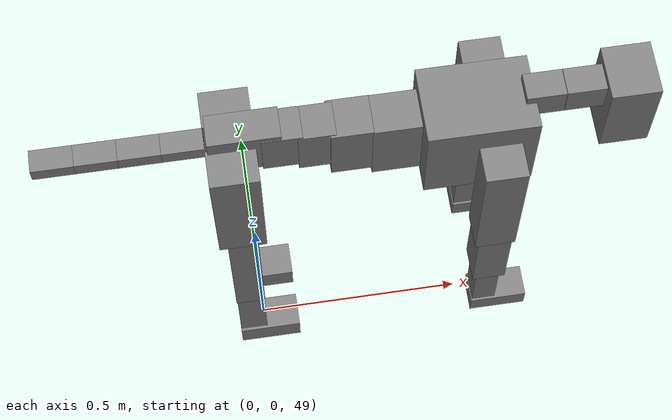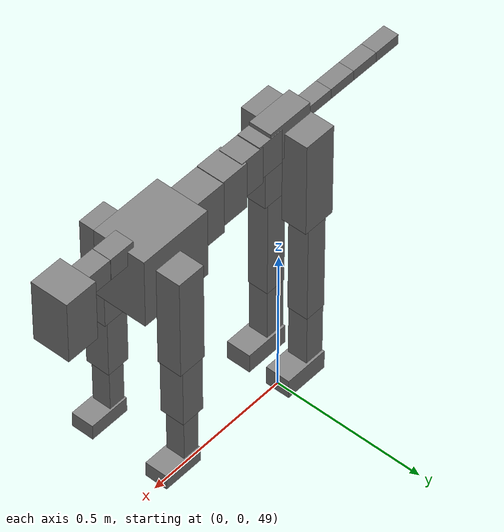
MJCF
<mujoco model="dog">

    <default>
        <joint armature="0.02" stiffness="1" damping="0.2" limited="true" />
        <geom condim="3" friction="1 0.05 0.05" margin="0.01" />
        <motor ctrllimited="true" ctrlrange="-1.0 1.0" forcelimited="true" gear="50" />
    </default>

    <compiler inertiafromgeom="true" angle="radian" />

    <option timestep="0.016" iterations="50" tolerance="1e-10" solver="Newton" jacobian="dense" cone="pyramidal" />

    <size nconmax="20000" njmax="60000" nstack="5000000" />
    <visual>
        <map force="0.1" zfar="30" />
        <rgba haze="0.15 0.25 0.35 1" />
        <quality shadowsize="2048" />
        <global offwidth="800" offheight="800" />
    </visual>

    <asset>
        <texture type="skybox" builtin="gradient" rgb1="0.3 0.5 0.7" rgb2="0 0 0" width="512" height="512" />
        <texture name="texplane" type="2d" builtin="checker" rgb1=".2 .3 .4" rgb2=".1 0.15 0.2" width="512" height="512" mark="cross" markrgb=".8 .8 .8" />
        <texture name="texgeom" type="cube" builtin="flat" mark="cross" width="127" height="1278" rgb1="0.8 0.6 0.4" rgb2="0.8 0.6 0.4" markrgb="1 1 1" random="0.01" />

        <material name="matplane" reflectance="0.3" texture="texplane" texrepeat="1 1" texuniform="true" />
        <material name="matgeom" texture="texgeom" texuniform="true" rgba="0.8 0.6 .4 1" />
    </asset>

    <worldbody>
        <geom name="floor" pos="0 0 0" size="0 0 .25" type="plane" material="matplane" condim="3" />

        <light directional="false" diffuse=".2 .2 .2" specular="0 0 0" pos="0 0 5" dir="0 0 -1" castshadow="false" />
        <light mode="targetbodycom" target="torso" directional="false" diffuse=".8 .8 .8" specular="0.3 0.3 0.3" pos="0 0 4.0" dir="0 0 -1" />

        <body name="root" pos="0 0 50">
            <freejoint name="root_1" />
            <geom type="box" pos="0 0 -0.02" size="0.0774  0.0358  0.063" density="2030" />

            <body name="spine1" pos="0.054 0 0">
                <joint name="spine1_y" axis="0 1 0" range="0 0.7" limited="true" />
                <geom type="box" pos="0.02375 0 -0.03" size="0.04375  0.0375  0.05985" density="2030" />

                <body name="spine2" pos="0.0612 0 0">
                    <joint name="spine2_y" axis="0 1 0" range="-0.15 0.15" limited="true" />
                    <geom type="box" pos="0.03555  0  -0.04" size="0.04055  0.039  0.06615" density="2030" />

                    <body name="spine3" pos="0.0730 0 0">
                        <joint name="spine3_y" axis="0 1 0" range="-0.15 0.15" limited="true" />
                        <geom type="box" pos="0.03555  0  -0.057" size="0.04555  0.0445  0.081" density="2030" />

                        <body name="spine4" pos="0.0780 0 0">
                            <joint name="spine4_y" axis="0 1 0" range="-0.15 0.15" limited="true" />
                            <geom type="box" pos="0.05265  0  -0.07" size="0.05265  0.045  0.09135" density="2030" />

                            <body name="torso" pos="0.1082 0 0">
                                <joint name="torso_y" axis="0 1 0" range="-0.15 0.15" limited="true" />
                                <geom type="box" pos="0.11925  0  -0.085" size="0.11925  0.085  0.11745" density="2030" />

                                <body name="neck1" pos="0.2160  0   0.0180">
                                    <joint name="neck1_y" axis="0 1 0" range="-1.2  -1" limited="true" />
                                    <geom type="box" pos="0.0423  0  0" size="0.0423  0.03  0.036" density="2325" />

                                    <body name="neck2" pos="0.0853  0  0">
                                        <joint name="neck2_y" axis="0 1 0" range="0.1  0" limited="true" />
                                        <geom type="box" pos="0.0423  0  0" size="0.0423  0.03  0.036" density="2325" />

                                        <body name="head" pos="0.0853  0  0">
                                            <joint name="head_y" axis="0 1 0" range="-0.3  -0.2" limited="true" />
                                            <geom type="box" pos="0.0531  0  -0.055" size="0.0531  0.06  0.1044" density="4030" />

                                        </body>
                                    </body>
                                </body>

                                <body name="front_shoulder" pos="0.156  0   -0.0480">
                                    <joint name="front_shoulder_y" axis="0 1 0" range="-1 1.5" limited="true" />
                                    <geom type="box" pos="0 0.13 -0.1434" size="0.0457  0.0390  0.1700" density="1158" />
                                    <geom type="box" pos="0 -0.13 -0.1434" size="0.0457  0.0390  0.1700" density="1158" />

                                    <body name="front_elbow" pos="0  0  -0.2868">
                                        <joint name="front_elbow_y" axis="0 1 0" range="-2 0" limited="true" />
                                        <geom type="box" pos="0 0.13 -0.1106" size="0.0381  0.0389  0.1106" density="1081" />
                                        <geom type="box" pos="0 -0.13 -0.1106" size="0.0381  0.0389  0.1106" density="1081" />

                                        <body name="front_wrist" pos="0  0  -0.2211">
                                            <joint name="front_wrist_y" axis="0 1 0" range="-0.2 0" limited="true" />
                                            <geom type="box" pos="0 0.13 -0.0816" size="0.0275  0.0306  0.0948" density="1664" />
                                            <geom type="box" pos="0 -0.13 -0.0816" size="0.0275  0.0306  0.0948" density="1664" />

                                            <body name="front_finger_end" pos="0  0  -0.1633">
                                                <joint name="front_finger_y" axis="0 1 0" range="-0.4 1" limited="true" />
                                                <geom type="box" pos="0.0364  0.13  -0.0107" size="0.0666  0.0364  0.0257" density="1515" />
                                                <geom type="box" pos="0.0364  -0.13  -0.0107" size="0.0666  0.0364  0.0257" density="1515" />

                                            </body>

                                        </body>
                                    </body>
                                </body>

                            </body>
                        </body>
                    </body>
                </body>
            </body>

            <body name="back_hip" pos="-0.03 0 -0.018">
                <joint name="back_hip_y" axis="0 1 0" range="-1.5 0.3" limited="true" />
                <geom type="box" pos="0 0.07 -0.1380" size="0.0531  0.0416  0.1608" density="1154" />
                <geom type="box" pos="0 -0.07 -0.1380" size="0.0531  0.0416  0.1608" density="1154" />

                <body name="back_knee" pos="0  0  -0.2759">
                    <joint name="back_knee_y" axis="0 1 0" range="0 2.8" limited="true" />
                    <geom type="box" pos="0 0.07 -0.1782" size="0.0345  0.0340  0.1938" density="1227" />
                    <geom type="box" pos="0 -0.07 -0.1782" size="0.0345  0.0340  0.1938" density="1227" />

                    <body name="back_ankle" pos="0  0  -0.3564">
                        <joint name="back_ankle_y" axis="0 1 0" range="-2.2 0" limited="true" />
                        <geom type="box" pos="0 0.07 -0.1040" size="0.0325  0.0325  0.1153" density="1284" />
                        <geom type="box" pos="0 -0.07 -0.1040" size="0.0325  0.0325  0.1153" density="1284" />

                        <body name="back_toe_end" pos="0  0  -0.2080">
                            <joint name="back_toe_y" axis="0 1 0" range="-0.4 1" limited="true" />
                            <geom type="box" pos="0.0400  0.07  -0.0180" size="0.0733  0.0400  0.0330" density="1515" />
                            <geom type="box" pos="0.0400  -0.07  -0.0180" size="0.0733  0.0400  0.0330" density="1515" />

                        </body>
                    </body>
                </body>
            </body>

            <body name="tail1" pos="-0.074 0 -0.006">
                <joint name="tail1_y" axis="0 1 0" range="-0.2 0.2" limited="true" />
                <geom type="box" pos="-0.0536  0  0" size="0.045  0.025  0.0175" density="1587" />

                <body name="tail2" pos="-0.09 0 0">
                    <joint name="tail2_y" axis="0 1 0" range="-0.2 0.2" limited="true" />
                    <geom type="box" pos="-0.0536  0  0" size="0.045  0.025  0.0175" density="1587" />

                    <body name="tail3" pos="-0.09 0 0">
                        <joint name="tail3_y" axis="0 1 0" range="-0.2 0.2" limited="true" />
                        <geom type="box" pos="-0.0536  0  0" size="0.045  0.025  0.0175" density="1587" />

                        <body name="tail4" pos="-0.09 0 0">
                            <joint name="tail4_y" axis="0 1 0" range="-0.2 0.2" limited="true" />
                            <geom type="box" pos="-0.0536  0  0" size="0.045  0.025  0.0175" density="1587" />

                        </body>
                    </body>
                </body>
            </body>
        </body>
    </worldbody>

    <actuator>
        <motor joint="spine1_y" forcerange="-150 150     " />
        <motor joint="spine2_y" forcerange="-150 150     " />
        <motor joint="spine3_y" forcerange="-150 150     " />
        <motor joint="spine4_y" forcerange="-150 150     " />
        <motor joint="torso_y" forcerange="-150 150     " />
        <motor joint="neck1_y" forcerange="-100 100       " />
        <motor joint="neck2_y" forcerange="-100 100       " />
        <motor joint="head_y" forcerange="-150 150       " />
        <motor joint="front_shoulder_y" forcerange="-195.32 164.91" />
        <motor joint="front_elbow_y" forcerange="-189.99 193.13" />
        <motor joint="front_wrist_y" forcerange="-115.55 129.31" />
        <motor joint="front_finger_y" forcerange="-79.94 73.95" />
        <motor joint="back_hip_y" forcerange="-370.18 384.88" />
        <motor joint="back_knee_y" forcerange="-313.84 380.49" />
        <motor joint="back_angle_y" forcerange="-169.40 249.84" />
        <motor joint="back_toe_y" forcerange="-108.86 130.84" />
        <motor joint="tail1_y" forcerange="-50 50     " />
        <motor joint="tail2_y" forcerange="-50 50     " />
        <motor joint="tail3_y" forcerange="-50 50     " />
        <motor joint="tail4_y" forcerange="-50 50     " />
    </actuator>
</mujoco>
